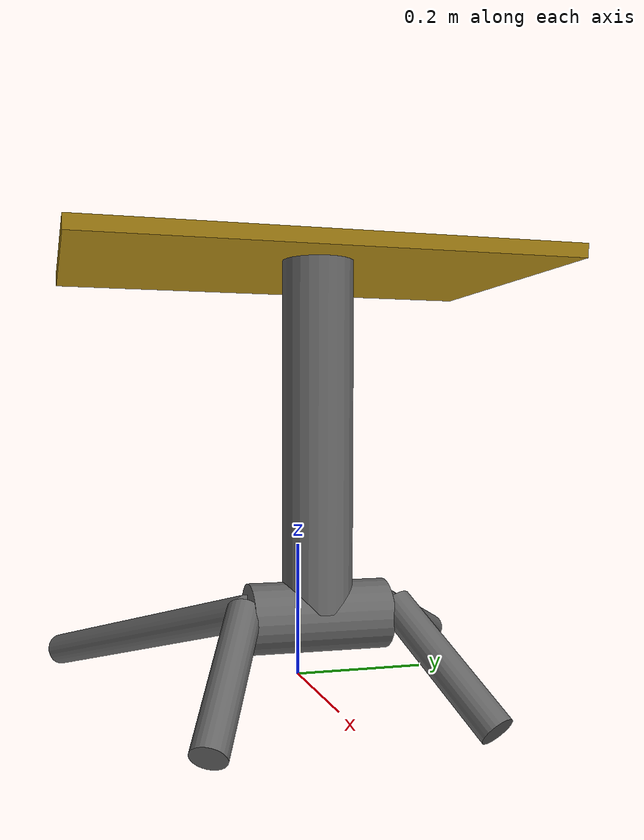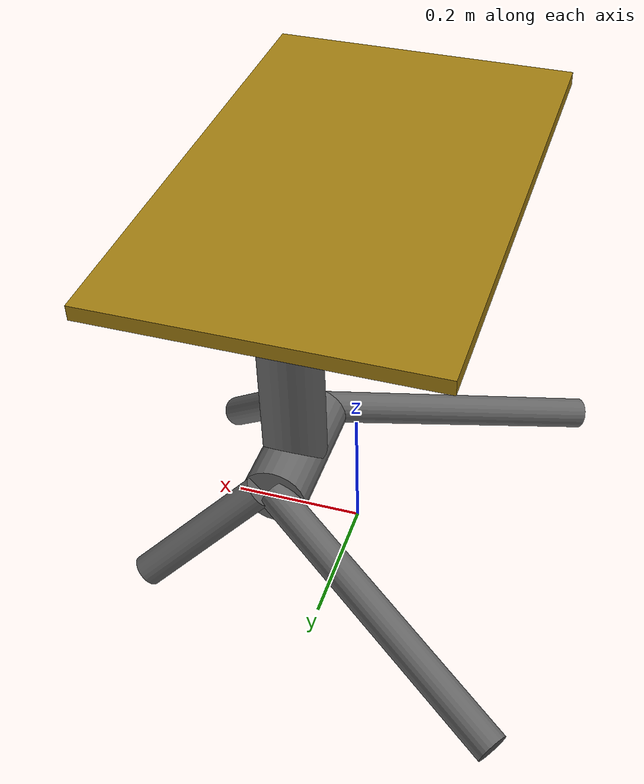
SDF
<?xml version="1.0" ?>
<sdf version="1.8">
  <model name="personal_table">
    <link name="link">
      <inertial>
        <mass>1.0</mass>
      </inertial>

      <collision name="top">
        <pose>0.0 0.0 0.62 0.0 0.0 0.0</pose>
        <geometry>
          <box>
            <size>0.44 0.7 0.02</size>
          </box>
        </geometry>
      </collision>

      <visual name="top_v">
        <pose>0.0 0.0 0.62 0.0 0.0 0.0</pose>
        <geometry>
          <box>
            <size>0.44 0.7 0.02</size>
          </box>
        </geometry>

        <material>
          <ambient>0.63 0.49 0.07 1</ambient>
          <diffuse>0.63 0.49 0.07 1</diffuse>
        </material>
      </visual>

      <collision name="leg_center">
        <pose>0.1 0.0 0.37 0.0 0.0 0.0</pose>
        <geometry>
          <cylinder>
            <radius>0.05</radius>
            <length>0.5</length>
          </cylinder>
        </geometry>
      </collision>

      <visual name="leg_center_v">
        <pose>0.1 0.0 0.37 0.0 0.0 0.0</pose>
        <geometry>
          <cylinder>
            <radius>0.05</radius>
            <length>0.5</length>
          </cylinder>
        </geometry>

        <material>
          <ambient>0.4 0.4 0.4 1</ambient>
          <diffuse>0.4 0.4 0.4 1</diffuse>
        </material>
      </visual>

      <collision name="leg_bar">
        <pose>0.1 0.0 0.11 1.57 0.0 0.0</pose>
        <geometry>
          <cylinder>
            <radius>0.05</radius>
            <length>0.2</length>
          </cylinder>
        </geometry>
      </collision>

      <visual name="leg_bar_v">
        <pose>0.1 0.0 0.11 1.57 0.0 0.0</pose>
        <geometry>
          <cylinder>
            <radius>0.05</radius>
            <length>0.2</length>
          </cylinder>
        </geometry>

        <material>
          <ambient>0.4 0.4 0.4 1</ambient>
          <diffuse>0.4 0.4 0.4 1</diffuse>
        </material>
      </visual>

      <collision name="leg_front_left">
        <pose>-0.1 0.225 0.055 0.0 1.3 -0.56</pose>
        <geometry>
          <cylinder>
            <radius>0.025</radius>
            <length>0.484</length>
          </cylinder>
        </geometry>
      </collision>

      <visual name="leg_front_left_v">
        <pose>-0.1 0.225 0.055 0.0 1.3 -0.56</pose>
        <geometry>
          <cylinder>
            <radius>0.025</radius>
            <length>0.484</length>
          </cylinder>
        </geometry>

        <material>
          <ambient>0.4 0.4 0.4 1</ambient>
          <diffuse>0.4 0.4 0.4 1</diffuse>
        </material>
      </visual>

      <collision name="leg_front_right">
        <pose>-0.1 -0.225 0.055 0.0 1.3 0.56</pose>
        <geometry>
          <cylinder>
            <radius>0.025</radius>
            <length>0.484</length>
          </cylinder>
        </geometry>
      </collision>

      <visual name="leg_front_right_v">
        <pose>-0.1 -0.225 0.055 0.0 1.3 0.56</pose>
        <geometry>
          <cylinder>
            <radius>0.025</radius>
            <length>0.484</length>
          </cylinder>
        </geometry>

        <material>
          <ambient>0.4 0.4 0.4 1</ambient>
          <diffuse>0.4 0.4 0.4 1</diffuse>
        </material>
      </visual>

      <collision name="leg_back_left">
        <pose>0.2 0.15 0.055 0.0 -0.90 0.46</pose>
        <geometry>
          <cylinder>
            <radius>0.025</radius>
            <length>0.23</length>
          </cylinder>
        </geometry>
      </collision>

      <visual name="leg_back_left_v">
        <pose>0.2 0.15 0.055 0.0 -0.90 0.46</pose>
        <geometry>
          <cylinder>
            <radius>0.025</radius>
            <length>0.23</length>
          </cylinder>
        </geometry>

        <material>
          <ambient>0.4 0.4 0.4 1</ambient>
          <diffuse>0.4 0.4 0.4 1</diffuse>
        </material>
      </visual>

      <collision name="leg_back_right">
        <pose>0.2 -0.15 0.055 0.0 -0.90 -0.46</pose>
        <geometry>
          <cylinder>
            <radius>0.025</radius>
            <length>0.23</length>
          </cylinder>
        </geometry>
      </collision>

      <visual name="leg_back_right_v">
        <pose>0.2 -0.15 0.055 0.0 -0.90 -0.46</pose>
        <geometry>
          <cylinder>
            <radius>0.025</radius>
            <length>0.23</length>
          </cylinder>
        </geometry>

        <material>
          <ambient>0.4 0.4 0.4 1</ambient>
          <diffuse>0.4 0.4 0.4 1</diffuse>
        </material>
      </visual>
    </link>
  </model>
</sdf>
